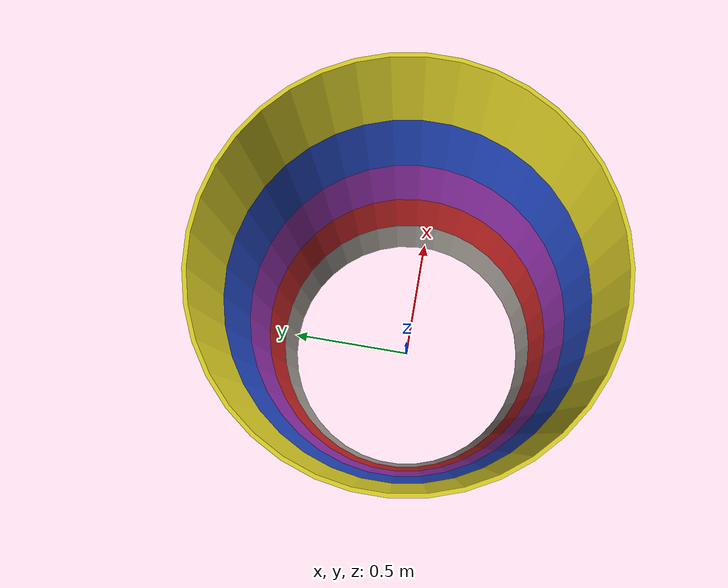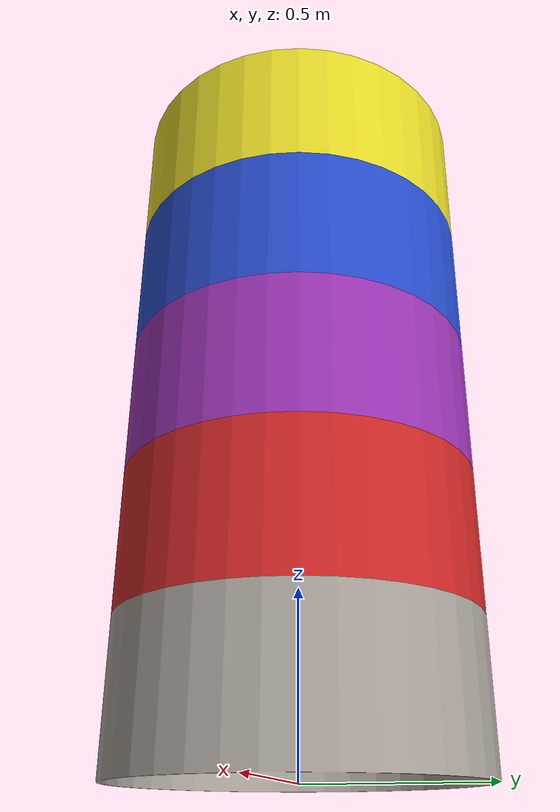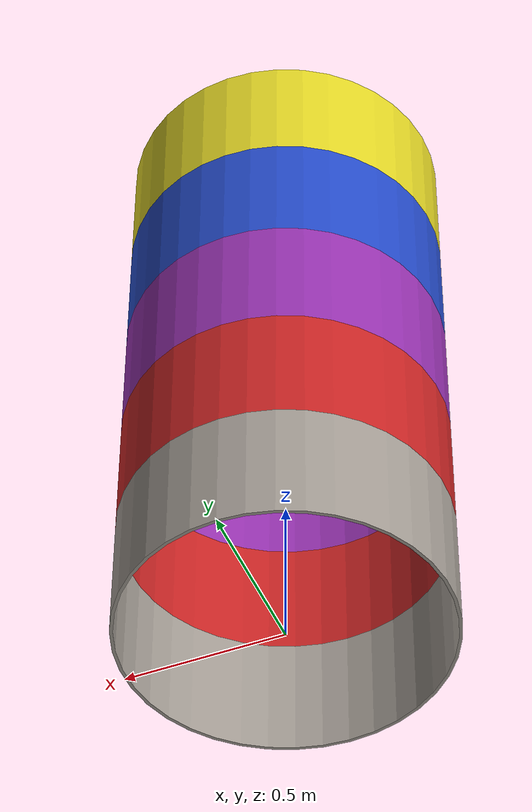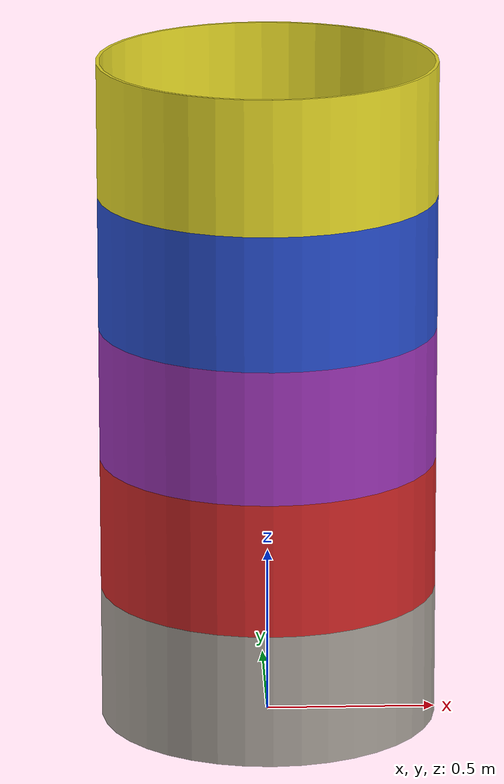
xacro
<?xml version="1.0" encoding="utf-8"?>
<robot name="only_linear" xmlns:xacro="http://www.ros.org/wiki/xacro">

  <!-- Macro to define levels links -->
  <!-- Input parameters: level number, xyz of CoM -->
  <xacro:macro name="level" params="num xyz">

    <link name="cy_linear_l${num}">
		<inertial>
			<origin
				xyz="0 0.2 0"
				rpy="0 0 0" />
			  <mass
				value="98.282" />
			  <inertia
				ixx="13.352"
				ixy="-9.4023E-31"
				ixz="-2.1857E-30"
				iyy="24.084"
				iyz="2.1192E-31"
				izz="13.352" />
			</inertial>
		<visual>
		  <origin
			xyz="0 0 0"
			rpy="0 0 0" />
		  <geometry>
			<mesh
			filename="package://viman_visualize/meshes/cy_linear.STL" />
		  </geometry>
		</visual>
		<collision>
		  <origin
			xyz="0 0 0"
			rpy="0 0 0" />
		  <geometry>
			<mesh
			filename="package://viman_visualize/meshes/cy_linear.STL" />
		  </geometry>
		</collision>
    </link>

    <joint name="cy_linear_l${num}_joint" type="fixed">
        <parent link="cy_linear_l0"/>
        <child link="cy_linear_l${num}"/>
        <origin rpy="0 0 0" xyz="${xyz}"/>
        <axis xyz="0 1 0" />
    </joint>

  </xacro:macro>

  <link name="cy_linear_l0">
    <inertial>
      <origin
        xyz="0 0.2 0"
        rpy="0 0 0" />
      <mass
        value="98.282" />
      <inertia
        ixx="13.352"
        ixy="-9.4023E-31"
        ixz="-2.1857E-30"
        iyy="24.084"
        iyz="2.1192E-31"
        izz="13.352" />
    </inertial>
    <visual>
      <origin
        xyz="0 0 0"
        rpy="0 0 0" />
      <geometry>
        <mesh
          filename="package://viman_visualize/meshes/cy_linear.STL" />
      </geometry>
      <material
        name="">
        <color
          rgba="0.64706 0.61961 0.58824 1" />
      </material>
    </visual>
    <collision>
      <origin
        xyz="0 0 0"
        rpy="0 0 0" />
      <geometry>
        <mesh
          filename="package://viman_visualize/meshes/cy_linear.STL" />
      </geometry>
    </collision>
  </link>

  <xacro:level num="1" xyz="0 0 0.4"/>
  <xacro:level num="2" xyz="0 0 0.8"/>
  <xacro:level num="3" xyz="0 0 1.2"/>
  <xacro:level num="4" xyz="0 0 1.6"/>

  <gazebo reference="cy_linear_l0">
	<material>Gazebo/Green</material>
  </gazebo>

  <gazebo reference="cy_linear_l1">
	<material>Gazebo/Red</material>
  </gazebo>

  <gazebo reference="cy_linear_l2">
	<material>Gazebo/Purple</material>
  </gazebo>

  <gazebo reference="cy_linear_l3">
	<material>Gazebo/Blue</material>
  </gazebo>

  <gazebo reference="cy_linear_l4">
	<material>Gazebo/Yellow</material>
  </gazebo>

</robot>
